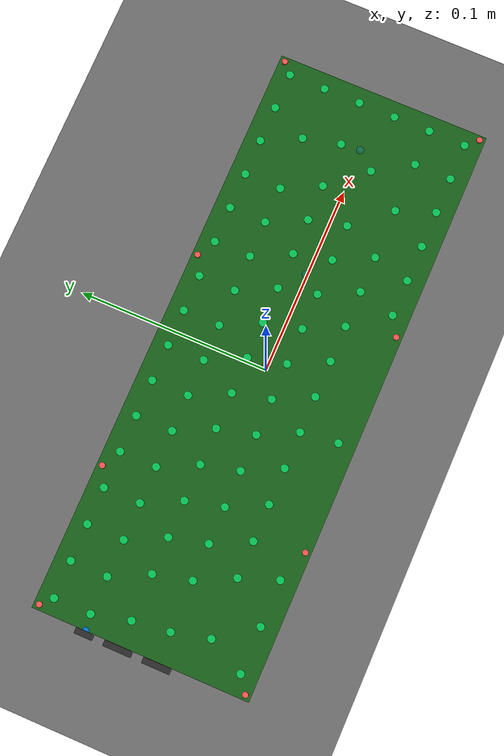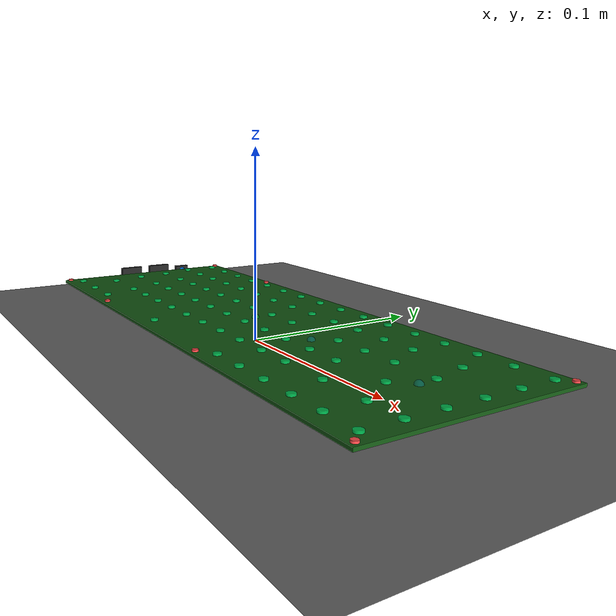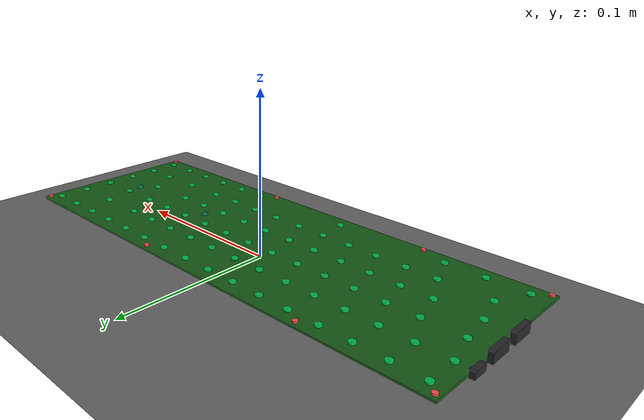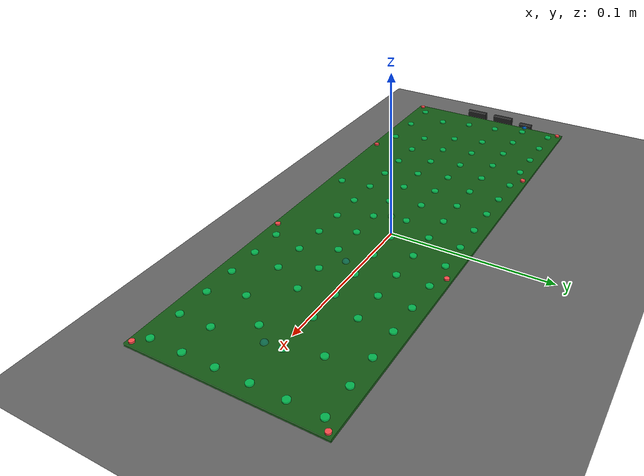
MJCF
<mujoco model="keyboard_pcb">

  <compiler angle="radian" autolimits="true"/>

  <option gravity="0 0 -9.81" timestep="0.002"/>

  <asset>
    <material name="fr4_green"
              rgba="0.08 0.35 0.08 1"
              specular="0.2"
              shininess="0.3"
              reflectance="0.05"/>

    <material name="connector_dark"
              rgba="0.15 0.15 0.15 1"
              specular="0.4"
              shininess="0.5"/>
  </asset>

  <worldbody>

    <geom name="ground" type="plane" size="1 1 0.1"
          pos="0 0 0"
          friction="0.8 0.005 0.0001"
          rgba="0.4 0.4 0.4 1"/>

    <body name="pcb" pos="0 0 0.01130">

      <inertial pos="0 0 0"
                mass="0.100"
                diaginertia="9.3e-5 8.1e-4 8.9e-4"/>

      <freejoint name="pcb_free"/>

      <!-- ── MAIN PCB BOARD ─────────────────────────────────────────────
           302mm × 112mm × 1.6mm
           Half-extents: 0.1510, 0.0560, 0.0008
      -->
      <geom name="pcb_board"
            type="box"
            size="0.1510 0.0560 0.0008"
            pos="0 0 0"
            material="fr4_green"
            density="1850"
            friction="0.6 0.005 0.0001"
            condim="4"
            priority="1"/>

      <!-- USB-C port housing -->
      <geom name="usbc_housing"
            type="box"
            size="0.0015 0.0045 0.002"
            pos="-0.1525 0.028 0.001"
            material="connector_dark"
            density="1050"
            friction="0.6 0.005 0.0001"
            condim="4"
            priority="1"/>

      <!-- Power switch body -->
      <geom name="power_switch"
            type="box"
            size="0.0015 0.007 0.003"
            pos="-0.1525 0.0105 0.002"
            material="connector_dark"
            density="1050"
            friction="0.6 0.005 0.0001"
            condim="4"
            priority="1"/>

      <!-- OS toggle switch body -->
      <geom name="os_switch"
            type="box"
            size="0.0015 0.007 0.003"
            pos="-0.1525 -0.0095 0.002"
            material="connector_dark"
            density="1050"
            friction="0.6 0.005 0.0001"
            condim="4"
            priority="1"/>

      <!-- ══════════════════════════════════════════════════════════════
           REFERENCE SITES
           ══════════════════════════════════════════════════════════════ -->

      <!-- PCB center reference -->
      <site name="pcb_center"
            type="sphere" size="0.002"
            pos="0 0 0.0008"
            rgba="0 0.8 0.2 0.4"/>

      <!-- Left edge insertion reference — robot aligns to usbc_cutout -->
      <site name="left_edge_ref"
            type="sphere" size="0.002"
            pos="-0.1510 0.028 0"
            rgba="0 0.5 1 0.8"/>

      <!-- Vacuum grasp sites — right side, away from left edge features -->
      <site name="vacuum_grasp_left"
            type="sphere" size="0.002"
            pos="0.05 0 0.0008"
            rgba="0 0.6 0.8 0.3"/>

      <site name="vacuum_grasp_right"
            type="sphere" size="0.002"
            pos="0.12 0 0.0008"
            rgba="0 0.6 0.8 0.3"/>

      <!-- ROW 0 — Function row (16 keys) -->
      <site name="sock_Esc"     type="cylinder" size="0.002 0.001" pos="-0.1429  0.0480 0.0008" rgba="0 1 0.5 0.6"/>
      <site name="sock_F1"      type="cylinder" size="0.002 0.001" pos="-0.1238  0.0480 0.0008" rgba="0 1 0.5 0.6"/>
      <site name="sock_F2"      type="cylinder" size="0.002 0.001" pos="-0.1048  0.0480 0.0008" rgba="0 1 0.5 0.6"/>
      <site name="sock_F3"      type="cylinder" size="0.002 0.001" pos="-0.0857  0.0480 0.0008" rgba="0 1 0.5 0.6"/>
      <site name="sock_F4"      type="cylinder" size="0.002 0.001" pos="-0.0667  0.0480 0.0008" rgba="0 1 0.5 0.6"/>
      <site name="sock_F5"      type="cylinder" size="0.002 0.001" pos="-0.0476  0.0480 0.0008" rgba="0 1 0.5 0.6"/>
      <site name="sock_F6"      type="cylinder" size="0.002 0.001" pos="-0.0286  0.0480 0.0008" rgba="0 1 0.5 0.6"/>
      <site name="sock_F7"      type="cylinder" size="0.002 0.001" pos="-0.0095  0.0480 0.0008" rgba="0 1 0.5 0.6"/>
      <site name="sock_F8"      type="cylinder" size="0.002 0.001" pos=" 0.0095  0.0480 0.0008" rgba="0 1 0.5 0.6"/>
      <site name="sock_F9"      type="cylinder" size="0.002 0.001" pos=" 0.0286  0.0480 0.0008" rgba="0 1 0.5 0.6"/>
      <site name="sock_F10"     type="cylinder" size="0.002 0.001" pos=" 0.0476  0.0480 0.0008" rgba="0 1 0.5 0.6"/>
      <site name="sock_F11"     type="cylinder" size="0.002 0.001" pos=" 0.0667  0.0480 0.0008" rgba="0 1 0.5 0.6"/>
      <site name="sock_F12"     type="cylinder" size="0.002 0.001" pos=" 0.0857  0.0480 0.0008" rgba="0 1 0.5 0.6"/>
      <site name="sock_PrtSc"   type="cylinder" size="0.002 0.001" pos=" 0.1048  0.0480 0.0008" rgba="0 1 0.5 0.6"/>
      <site name="sock_Pause"   type="cylinder" size="0.002 0.001" pos=" 0.1238  0.0480 0.0008" rgba="0 1 0.5 0.6"/>
      <site name="sock_Del"     type="cylinder" size="0.002 0.001" pos=" 0.1429  0.0480 0.0008" rgba="0 1 0.5 0.6"/>

      <!-- ROW 1 — Number row (15 keys) -->
      <site name="sock_Grave"   type="cylinder" size="0.002 0.001" pos="-0.1429  0.0290 0.0008" rgba="0 1 0.5 0.6"/>
      <site name="sock_1"       type="cylinder" size="0.002 0.001" pos="-0.1238  0.0290 0.0008" rgba="0 1 0.5 0.6"/>
      <site name="sock_2"       type="cylinder" size="0.002 0.001" pos="-0.1048  0.0290 0.0008" rgba="0 1 0.5 0.6"/>
      <site name="sock_3"       type="cylinder" size="0.002 0.001" pos="-0.0857  0.0290 0.0008" rgba="0 1 0.5 0.6"/>
      <site name="sock_4"       type="cylinder" size="0.002 0.001" pos="-0.0667  0.0290 0.0008" rgba="0 1 0.5 0.6"/>
      <site name="sock_5"       type="cylinder" size="0.002 0.001" pos="-0.0476  0.0290 0.0008" rgba="0 1 0.5 0.6"/>
      <site name="sock_6"       type="cylinder" size="0.002 0.001" pos="-0.0286  0.0290 0.0008" rgba="0 1 0.5 0.6"/>
      <site name="sock_7"       type="cylinder" size="0.002 0.001" pos="-0.0095  0.0290 0.0008" rgba="0 1 0.5 0.6"/>
      <site name="sock_8"       type="cylinder" size="0.002 0.001" pos=" 0.0095  0.0290 0.0008" rgba="0 1 0.5 0.6"/>
      <site name="sock_9"       type="cylinder" size="0.002 0.001" pos=" 0.0286  0.0290 0.0008" rgba="0 1 0.5 0.6"/>
      <site name="sock_0"       type="cylinder" size="0.002 0.001" pos=" 0.0476  0.0290 0.0008" rgba="0 1 0.5 0.6"/>
      <site name="sock_Minus"   type="cylinder" size="0.002 0.001" pos=" 0.0667  0.0290 0.0008" rgba="0 1 0.5 0.6"/>
      <site name="sock_Equal"   type="cylinder" size="0.002 0.001" pos=" 0.0857  0.0290 0.0008" rgba="0 1 0.5 0.6"/>
      <site name="sock_Bksp"    type="cylinder" size="0.002 0.001" pos=" 0.1143  0.0290 0.0008" rgba="0 1 0.5 0.6"/>
      <site name="sock_PgUp"    type="cylinder" size="0.002 0.001" pos=" 0.1429  0.0290 0.0008" rgba="0 1 0.5 0.6"/>

      <!-- ROW 2 — QWERTY row (15 keys) -->
      <site name="sock_Tab"     type="cylinder" size="0.002 0.001" pos="-0.1381  0.0099 0.0008" rgba="0 1 0.5 0.6"/>
      <site name="sock_Q"       type="cylinder" size="0.002 0.001" pos="-0.1143  0.0099 0.0008" rgba="0 1 0.5 0.6"/>
      <site name="sock_W"       type="cylinder" size="0.002 0.001" pos="-0.0953  0.0099 0.0008" rgba="0 1 0.5 0.6"/>
      <site name="sock_E"       type="cylinder" size="0.002 0.001" pos="-0.0762  0.0099 0.0008" rgba="0 1 0.5 0.6"/>
      <site name="sock_R"       type="cylinder" size="0.002 0.001" pos="-0.0572  0.0099 0.0008" rgba="0 1 0.5 0.6"/>
      <site name="sock_T"       type="cylinder" size="0.002 0.001" pos="-0.0381  0.0099 0.0008" rgba="0 1 0.5 0.6"/>
      <site name="sock_Y"       type="cylinder" size="0.002 0.001" pos="-0.0191  0.0099 0.0008" rgba="0 1 0.5 0.6"/>
      <site name="sock_U"       type="cylinder" size="0.002 0.001" pos=" 0.0000  0.0099 0.0008" rgba="0 1 0.5 0.6"/>
      <site name="sock_I"       type="cylinder" size="0.002 0.001" pos=" 0.0191  0.0099 0.0008" rgba="0 1 0.5 0.6"/>
      <site name="sock_O"       type="cylinder" size="0.002 0.001" pos=" 0.0381  0.0099 0.0008" rgba="0 1 0.5 0.6"/>
      <site name="sock_P"       type="cylinder" size="0.002 0.001" pos=" 0.0572  0.0099 0.0008" rgba="0 1 0.5 0.6"/>
      <site name="sock_LBrace"  type="cylinder" size="0.002 0.001" pos=" 0.0762  0.0099 0.0008" rgba="0 1 0.5 0.6"/>
      <site name="sock_RBrace"  type="cylinder" size="0.002 0.001" pos=" 0.0953  0.0099 0.0008" rgba="0 1 0.5 0.6"/>
      <site name="sock_Bkslash" type="cylinder" size="0.002 0.001" pos=" 0.1191  0.0099 0.0008" rgba="0 1 0.5 0.6"/>
      <site name="sock_PgDn"    type="cylinder" size="0.002 0.001" pos=" 0.1429  0.0099 0.0008" rgba="0 1 0.5 0.6"/>

      <!-- ROW 3 — Home row (14 keys) -->
      <site name="sock_Caps"    type="cylinder" size="0.002 0.001" pos="-0.1357 -0.0092 0.0008" rgba="0 1 0.5 0.6"/>
      <site name="sock_A"       type="cylinder" size="0.002 0.001" pos="-0.1095 -0.0092 0.0008" rgba="0 1 0.5 0.6"/>
      <site name="sock_S"       type="cylinder" size="0.002 0.001" pos="-0.0905 -0.0092 0.0008" rgba="0 1 0.5 0.6"/>
      <site name="sock_D"       type="cylinder" size="0.002 0.001" pos="-0.0714 -0.0092 0.0008" rgba="0 1 0.5 0.6"/>
      <site name="sock_F"       type="cylinder" size="0.002 0.001" pos="-0.0524 -0.0092 0.0008" rgba="0 1 0.5 0.6"/>
      <site name="sock_G"       type="cylinder" size="0.002 0.001" pos="-0.0333 -0.0092 0.0008" rgba="0 1 0.5 0.6"/>
      <site name="sock_H"       type="cylinder" size="0.002 0.001" pos="-0.0143 -0.0092 0.0008" rgba="0 1 0.5 0.6"/>
      <site name="sock_J"       type="cylinder" size="0.002 0.001" pos=" 0.0048 -0.0092 0.0008" rgba="0 1 0.5 0.6"/>
      <site name="sock_K"       type="cylinder" size="0.002 0.001" pos=" 0.0238 -0.0092 0.0008" rgba="0 1 0.5 0.6"/>
      <site name="sock_L"       type="cylinder" size="0.002 0.001" pos=" 0.0429 -0.0092 0.0008" rgba="0 1 0.5 0.6"/>
      <site name="sock_Semicol" type="cylinder" size="0.002 0.001" pos=" 0.0619 -0.0092 0.0008" rgba="0 1 0.5 0.6"/>
      <site name="sock_Quote"   type="cylinder" size="0.002 0.001" pos=" 0.0810 -0.0092 0.0008" rgba="0 1 0.5 0.6"/>
      <site name="sock_Enter"   type="cylinder" size="0.002 0.001" pos=" 0.1119 -0.0092 0.0008" rgba="0 1 0.5 0.6"/>
      <site name="sock_Home"    type="cylinder" size="0.002 0.001" pos=" 0.1429 -0.0092 0.0008" rgba="0 1 0.5 0.6"/>

      <!-- ROW 4 — Shift row (14 keys) -->
      <site name="sock_LShift"  type="cylinder" size="0.002 0.001" pos="-0.1310 -0.0282 0.0008" rgba="0 1 0.5 0.6"/>
      <site name="sock_Z"       type="cylinder" size="0.002 0.001" pos="-0.1000 -0.0282 0.0008" rgba="0 1 0.5 0.6"/>
      <site name="sock_X"       type="cylinder" size="0.002 0.001" pos="-0.0810 -0.0282 0.0008" rgba="0 1 0.5 0.6"/>
      <site name="sock_C"       type="cylinder" size="0.002 0.001" pos="-0.0619 -0.0282 0.0008" rgba="0 1 0.5 0.6"/>
      <site name="sock_V"       type="cylinder" size="0.002 0.001" pos="-0.0429 -0.0282 0.0008" rgba="0 1 0.5 0.6"/>
      <site name="sock_B"       type="cylinder" size="0.002 0.001" pos="-0.0238 -0.0282 0.0008" rgba="0 1 0.5 0.6"/>
      <site name="sock_N"       type="cylinder" size="0.002 0.001" pos="-0.0048 -0.0282 0.0008" rgba="0 1 0.5 0.6"/>
      <site name="sock_M"       type="cylinder" size="0.002 0.001" pos=" 0.0143 -0.0282 0.0008" rgba="0 1 0.5 0.6"/>
      <site name="sock_Comma"   type="cylinder" size="0.002 0.001" pos=" 0.0333 -0.0282 0.0008" rgba="0 1 0.5 0.6"/>
      <site name="sock_Period"  type="cylinder" size="0.002 0.001" pos=" 0.0524 -0.0282 0.0008" rgba="0 1 0.5 0.6"/>
      <site name="sock_Slash"   type="cylinder" size="0.002 0.001" pos=" 0.0714 -0.0282 0.0008" rgba="0 1 0.5 0.6"/>
      <site name="sock_RShift"  type="cylinder" size="0.002 0.001" pos=" 0.0976 -0.0282 0.0008" rgba="0 1 0.5 0.6"/>
      <site name="sock_Up"      type="cylinder" size="0.002 0.001" pos=" 0.1238 -0.0282 0.0008" rgba="0 1 0.5 0.6"/>
      <site name="sock_End"     type="cylinder" size="0.002 0.001" pos=" 0.1429 -0.0282 0.0008" rgba="0 1 0.5 0.6"/>

      <!-- ROW 5 — Bottom row (10 keys) -->
      <site name="sock_LCtrl"  type="cylinder" size="0.002 0.001" pos="-0.1405 -0.0473 0.0008" rgba="0 1 0.5 0.6"/>
      <site name="sock_LWin"   type="cylinder" size="0.002 0.001" pos="-0.1167 -0.0473 0.0008" rgba="0 1 0.5 0.6"/>
      <site name="sock_LAlt"   type="cylinder" size="0.002 0.001" pos="-0.0929 -0.0473 0.0008" rgba="0 1 0.5 0.6"/>
      <site name="sock_Space"  type="cylinder" size="0.002 0.001" pos="-0.0214 -0.0473 0.0008" rgba="0 1 0.5 0.6"/>
      <site name="sock_RAlt"   type="cylinder" size="0.002 0.001" pos=" 0.0476 -0.0473 0.0008" rgba="0 1 0.5 0.6"/>
      <site name="sock_Fn"     type="cylinder" size="0.002 0.001" pos=" 0.0667 -0.0473 0.0008" rgba="0 1 0.5 0.6"/>
      <site name="sock_Left"   type="cylinder" size="0.002 0.001" pos=" 0.0857 -0.0473 0.0008" rgba="0 1 0.5 0.6"/>
      <site name="sock_Down"   type="cylinder" size="0.002 0.001" pos=" 0.1048 -0.0473 0.0008" rgba="0 1 0.5 0.6"/>
      <site name="sock_Right"  type="cylinder" size="0.002 0.001" pos=" 0.1238 -0.0473 0.0008" rgba="0 1 0.5 0.6"/>
      <site name="sock_End2"   type="cylinder" size="0.002 0.001" pos=" 0.1429 -0.0473 0.0008" rgba="0 1 0.5 0.6"/>

      <!-- 4 corner screw holes — match case boss positions exactly -->
      <site name="screw_FL" type="cylinder" size="0.0015 0.001" pos="-0.1484 -0.05315 0.0008" rgba="1 0.3 0.3 0.9"/>
      <site name="screw_FR" type="cylinder" size="0.0015 0.001" pos=" 0.1484 -0.05315 0.0008" rgba="1 0.3 0.3 0.9"/>
      <site name="screw_RL" type="cylinder" size="0.0015 0.001" pos="-0.1484  0.05315 0.0008" rgba="1 0.3 0.3 0.9"/>
      <site name="screw_RR" type="cylinder" size="0.0015 0.001" pos=" 0.1484  0.05315 0.0008" rgba="1 0.3 0.3 0.9"/>

      <!-- 4 center screw holes — positions unchanged, within new PCB boundary -->
      <site name="screw_C1" type="cylinder" size="0.0015 0.001" pos="-0.0762  0.05315 0.0008" rgba="1 0.3 0.3 0.9"/>
      <site name="screw_C2" type="cylinder" size="0.0015 0.001" pos=" 0.0381  0.05315 0.0008" rgba="1 0.3 0.3 0.9"/>
      <site name="screw_C3" type="cylinder" size="0.0015 0.001" pos="-0.0762 -0.05315 0.0008" rgba="1 0.3 0.3 0.9"/>
      <site name="screw_C4" type="cylinder" size="0.0015 0.001" pos=" 0.0381 -0.05315 0.0008" rgba="1 0.3 0.3 0.9"/>

    </body>

  </worldbody>

</mujoco>
